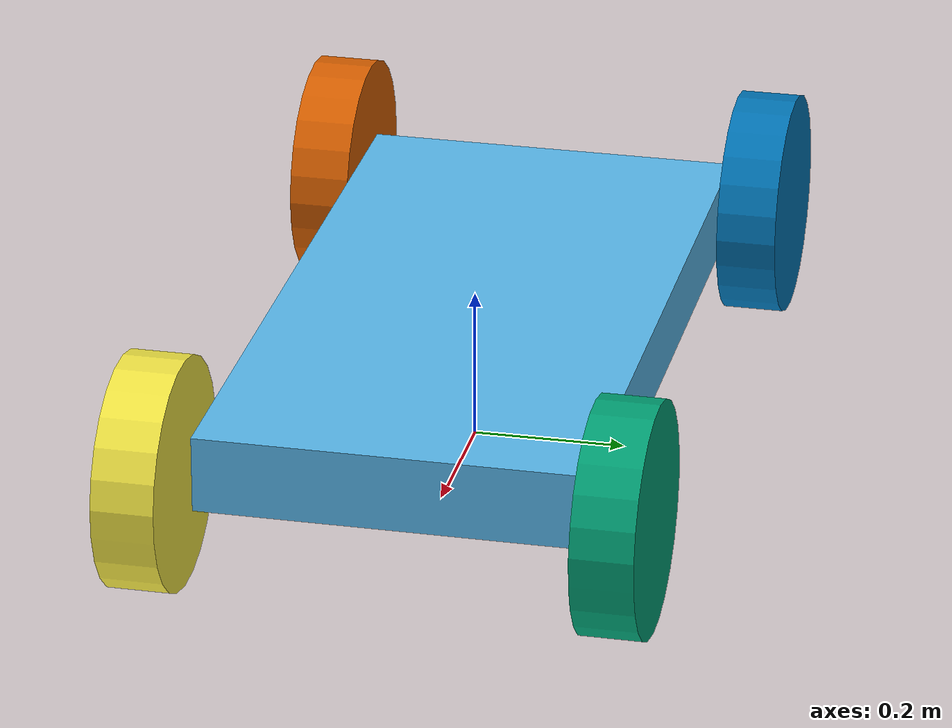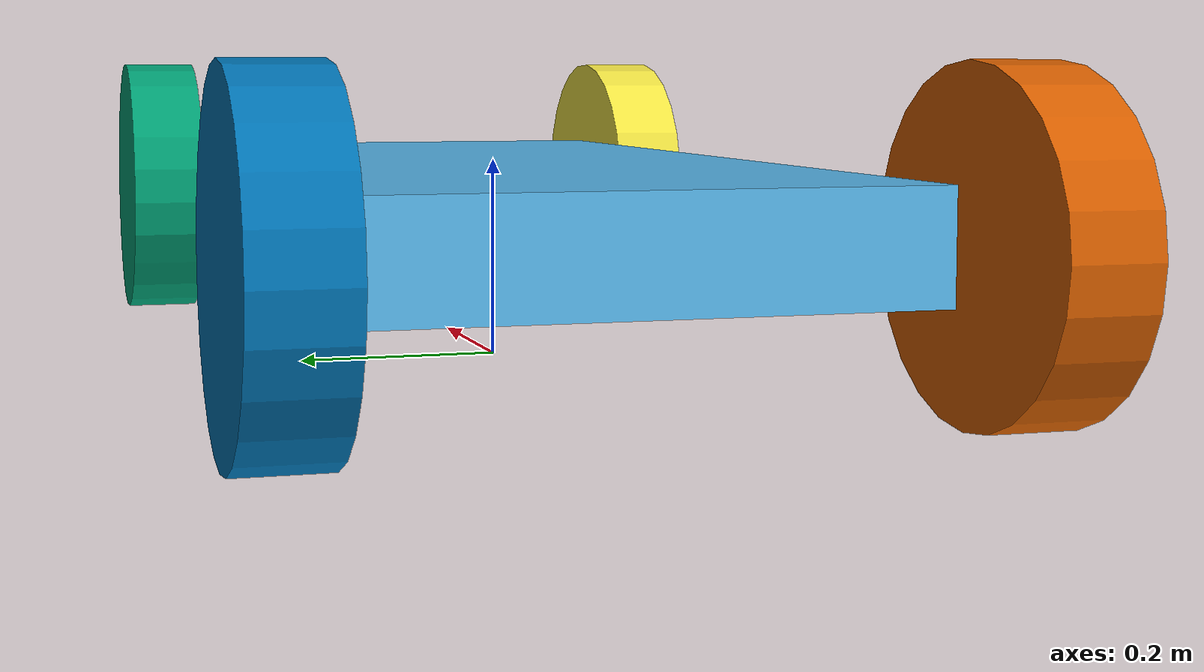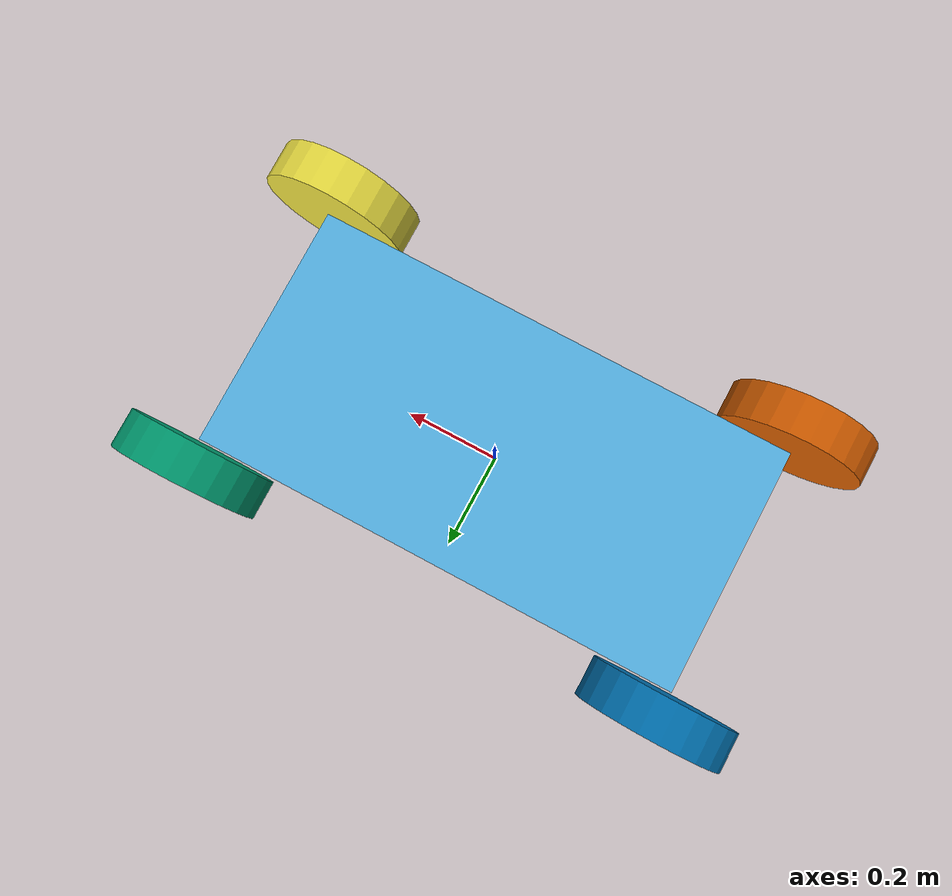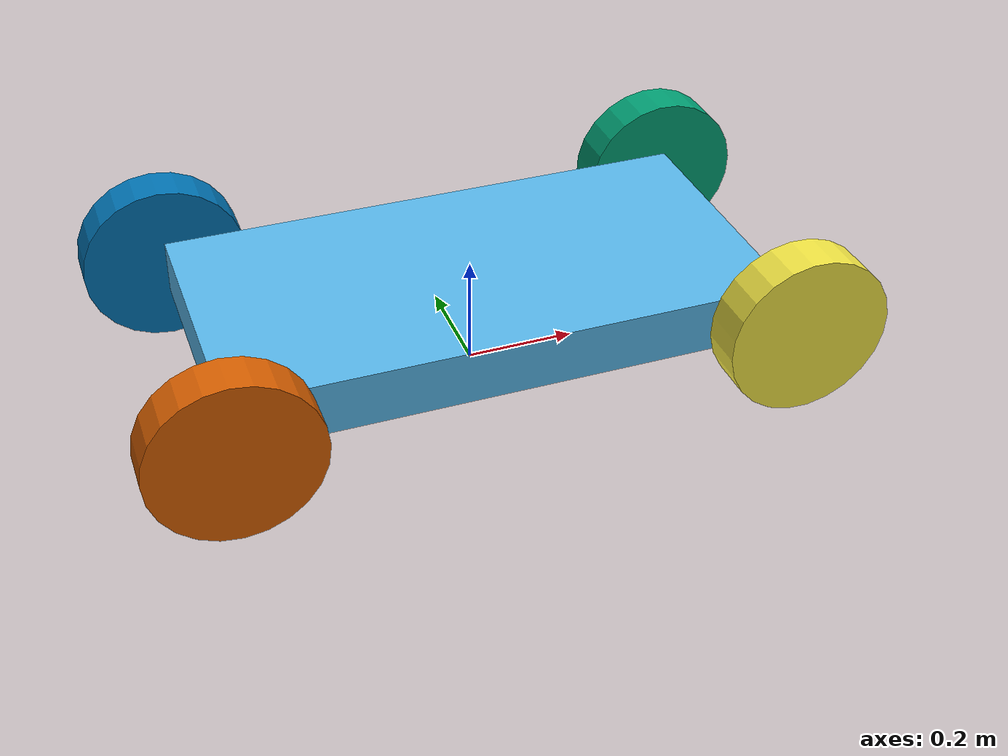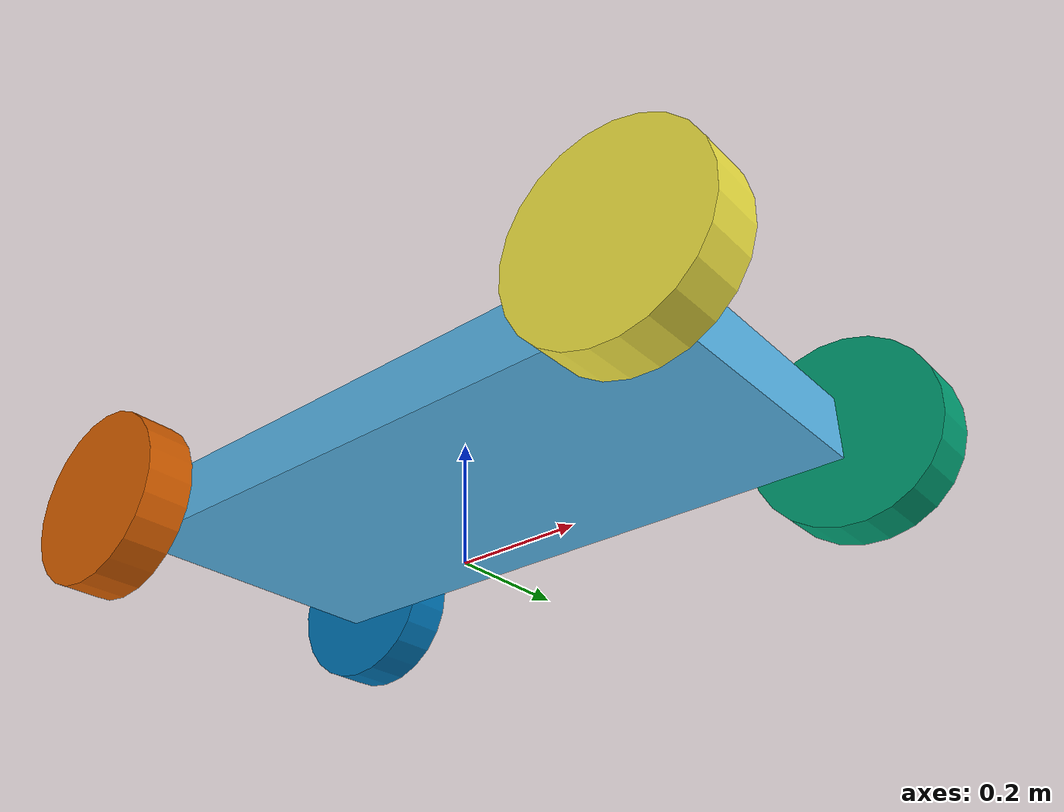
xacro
<?xml version='1.0'?>

<robot name="cart" xmlns:xacro="http://www.ros.org/wiki/xacro">

  <link name="front_left_wheel_dummy"/>

  <joint name="front_left_wheel_steer" type="revolute">
    <origin rpy="-1.57079 -0.08726  0" xyz="0.5   0.298 0.15"/>
    <parent link="chassis"/>
    <child link="front_left_wheel_dummy"/>
    <axis xyz="0 -1 0"/>
    <limit effort="0" lower="-0.610865238198" upper="0.610865238198" velocity="0"/>
  </joint>

  <joint name="front_left_wheel_spin" type="continuous">
    <parent link="front_left_wheel_dummy"/>
    <child link="front_left_wheel"/>
    <axis xyz="0 0 1"/>
    <limit effort="0.0" lower="-0" upper="0" velocity="0.0"/>
  </joint>

  <joint name="front_right_wheel_spin" type="continuous">
    <parent link="chassis"/>
    <child link="front_right_wheel"/>
    <origin rpy="-1.57079 -0.08726  0" xyz="0.5   -0.298  0.15"/>
    <axis xyz="0 0 1"/>
    <limit effort="0.0" lower="-0.610865238198" upper="0.610865238198" velocity="0.0"/>
  </joint>

  <joint name="rear_left_wheel_spin" type="continuous">
    <parent link="chassis"/>
    <child link="rear_left_wheel"/>
    <origin rpy="-1.57079  0       0" xyz="-0.5    0.298  0.15"/>
    <axis xyz="0 0 1"/>
    <limit effort="0" lower="0" upper="0" velocity="0"/>
  </joint>

  <joint name="rear_right_wheel_spin" type="continuous">
    <parent link="chassis"/>
    <child link="rear_right_wheel"/>
    <origin rpy="-1.57079  0       0" xyz="-0.5   -0.298  0.15"/>
    <axis xyz="0 0 1"/>
    <limit effort="0" lower="0" upper="0" velocity="0"/>
  </joint>

  <link name="chassis">
    <inertial>
      <mass value="10"/>
      <origin rpy="0 0 0" xyz="0.1 0  0"/>
      <inertia ixx="0.21666666666666667" ixy="0" ixz="0" iyy="0.8416666666666667" iyz="0" izz="1.0416666666666667"/>
    </inertial>
    <collision name="collision">
      <origin rpy="0 0 0" xyz="0   0   0.15"/>
      <geometry>
        <box size="1.0 0.5 0.1"/>
      </geometry>
    </collision>
    <visual name="visual">
      <origin rpy="0 0 0" xyz="0   0   0.15"/>
      <geometry>
        <box size="1.0 0.5 0.1"/>
      </geometry>
    </visual>
  </link>

  <link name="front_left_wheel">
    <inertial>
      <mass value="0.5"/>
      <origin rpy="0 0 0" xyz="0 0 0"/>
      <inertia ixx="0.0030791666666666667" ixy="0" ixz="0" iyy="0.0030791666666666667" iyz="0" izz="0.005625"/>
    </inertial>
    <collision name="collision">
      <origin rpy="0 0 0" xyz="0 0 0"/>
      <geometry>
        <cylinder length="0.08" radius="0.15"/>
      </geometry>
    </collision>
    <visual name="visual">
      <origin rpy="0 0 0" xyz="0 0 0"/>
      <geometry>
        <cylinder length="0.08" radius="0.15"/>
      </geometry>
    </visual>
  </link>

  <link name="front_right_wheel">
    <inertial>
      <mass value="0.5"/>
      <origin rpy="0 0 0" xyz="0 0 0"/>
      <inertia ixx="0.0030791666666666667" ixy="0" ixz="0" iyy="0.0030791666666666667" iyz="0" izz="0.005625"/>
    </inertial>
    <collision name="collision">
      <origin rpy="0 0 0" xyz="0 0 0"/>
      <geometry>
        <cylinder length="0.08" radius="0.15"/>
      </geometry>
    </collision>
    <visual name="visual">
      <origin rpy="0 0 0" xyz="0 0 0"/>
      <geometry>
        <cylinder length="0.08" radius="0.15"/>
      </geometry>
    </visual>
  </link>

  <link name="rear_left_wheel">
    <inertial>
      <mass value="0.5"/>
      <origin rpy="0 0 0" xyz="0 0 0"/>
      <inertia ixx="0.0030791666666666667" ixy="0" ixz="0" iyy="0.0030791666666666667" iyz="0" izz="0.005625"/>
    </inertial>
    <collision name="collision">
      <origin rpy="0 0 0" xyz="0 0 0"/>
      <geometry>
        <cylinder length="0.08" radius="0.15"/>
      </geometry>
    </collision>
    <visual name="visual">
      <origin rpy="0 0 0" xyz="0 0 0"/>
      <geometry>
        <cylinder length="0.08" radius="0.15"/>
      </geometry>
    </visual>
  </link>

  <link name="rear_right_wheel">
    <inertial>
      <mass value="0.5"/>
      <origin rpy="0 0 0" xyz="0 0 0"/>
      <inertia ixx="0.0030791666666666667" ixy="0" ixz="0" iyy="0.0030791666666666667" iyz="0" izz="0.005625"/>
    </inertial>
    <collision name="collision">
      <origin rpy="0 0 0" xyz="0 0 0"/>
      <geometry>
        <cylinder length="0.08" radius="0.15"/>
      </geometry>
    </collision>
    <visual name="visual">
      <origin rpy="0 0 0" xyz="0 0 0"/>
      <geometry>
        <cylinder length="0.08" radius="0.15"/>
      </geometry>
    </visual>
  </link>
</robot>
